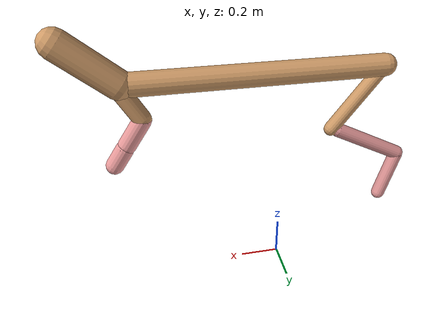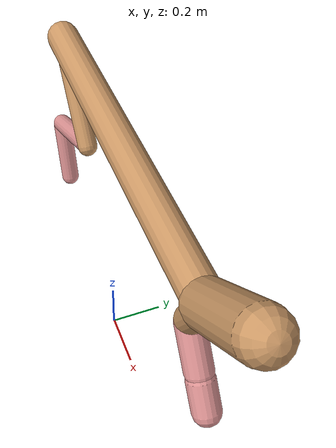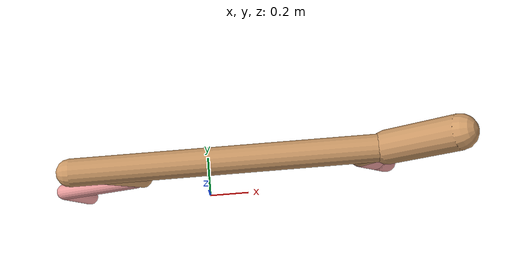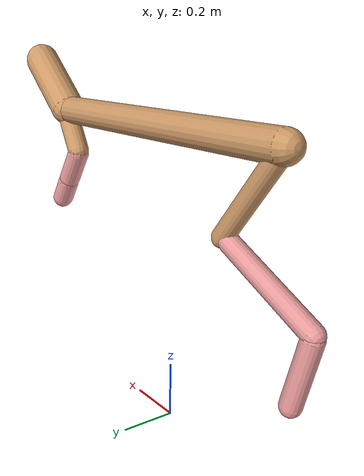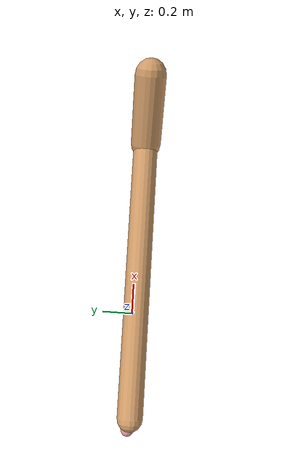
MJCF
<mujoco model="cheetah">
  <compiler angle="radian" coordinate="local" inertiafromgeom="true" settotalmass="14" />
  <default>
    <joint armature=".1" damping=".01" limited="true" solimplimit="0 .8 .03" solreflimit=".02 1" stiffness="8" />
    <geom conaffinity="0" condim="3" contype="1" friction="0.8 .1 .1" rgba="0.8 0.6 .4 1" solimp="0.0 0.8 0.01" solref="0.02 1" />
    <motor ctrllimited="true" ctrlrange="-1 1" />
  </default>
  <size nstack="300000" nuser_geom="1" />
  <option gravity="0 0 -9.81" timestep="0.01" />
  <worldbody>
    <body name="torso" pos="0.0 0.0 1.0622747859965904">
      <joint armature="0" axis="1 0 0" damping="0" limited="false" name="ignorex" pos="0 0 0" stiffness="0" type="slide" />
      <joint armature="0" axis="0 0 1" damping="0" limited="false" name="ignorez" pos="0 0 0" stiffness="0" type="slide" />
      <joint armature="0" axis="0 1 0" damping="0" limited="false" name="ignorey" pos="0 0 0" stiffness="0" type="hinge" />
      <geom fromto="-0.5 0.0 0.0 0.7549682288047828 0.0 0.0" name="torso" size="0.055752173078682785" type="capsule" />
      <geom axisangle="0 1 0 .87" name="head" pos="0.8549682288047827 0.0 0.1" size="0.06875907510202629 0.15" type="capsule" />

      <body name="bthigh" pos="-.5 0 0">
        <joint axis="0 1 0" damping="6" name="bthigh" pos="0 0 0" range="-.52 1.05" stiffness="240" type="hinge" />
        <geom axisangle="0 1 0 -3.8" name="bthigh" pos="0.1271423823169177 0.0 -0.165285097011993" size="0.03563134191652738 0.18951681692330982" type="capsule" />
        <body name="bshin" pos="0.21428476463383542 0.0 -0.320570194023986">
          <joint axis="0 1 0" damping="4.5" name="bshin" pos="0 0 0" range="-.785 .785" stiffness="180" type="hinge" />
          <geom axisangle="0 1 0 -2.03" name="bshin" pos="-0.181190053289283 0.0 -0.0905950266446415" rgba="0.9 0.6 0.6 1" size="0.03563134191652738 0.19605187957583775" type="capsule" />
          <body name="bfoot" pos="-0.362380106578566 0.0 -0.181190053289283">
            <joint axis="0 1 0" damping="3" name="bfoot" pos="0 0 0" range="-.4 .785" stiffness="120" type="hinge" />
            <geom axisangle="0 1 0 -.27" name="bfoot" pos="0.03852701328827628 0.0 -0.12457067629875998" rgba="0.9 0.6 0.6 1" size="0.03563134191652738 0.122859177867525" type="capsule" />
            <inertial mass="10" />
          </body>
        </body>
      </body>
      <body name="fthigh" pos="0.7549682288047828 0.0 0.0">
        <joint axis="0 1 0" damping="4.5" name="fthigh" pos="0 0 0" range="-1.5 0.8" stiffness="180" type="hinge" />
        <geom axisangle="0 1 0 .52" name="fthigh" pos="-0.04989554608158897 0.0 -0.0855352218541525" size="0.04311274810703968 0.0931" type="capsule" />
        <body name="fshin" pos="-0.09979109216317794 0.0 -0.171070443708305">
          <joint axis="0 1 0" damping="3" name="fshin" pos="0 0 0" range="-1.2 1.1" stiffness="120" type="hinge" />
          <geom axisangle="0 1 0 -.6" name="fshin" pos="0.046381400387749405 0.0 -0.06422040053688378" rgba="0.9 0.6 0.6 1" size="0.04311274810703968 0.07419999999999999" type="capsule" />
          <body name="ffoot" pos="0.09276280077549881 0.0 -0.12844080107376757">
            <joint axis="0 1 0" damping="1.5" name="ffoot" pos="0 0 0" range="-3.1 -0.3" stiffness="60" type="hinge" />
            <geom axisangle="0 1 0 -.6" name="ffoot" pos="0.033644090582416526 0.0 -0.05233525201709238" rgba="0.9 0.6 0.6 1" size="0.04311274810703968 0.049" type="capsule" />
            <inertial mass="10" />
          </body>
        </body>
      </body>
    </body>
  </worldbody>
  <actuator>
    <motor gear="120" joint="bthigh" name="bthigh" />
    <motor gear="90" joint="bshin" name="bshin" />
    <motor gear="60" joint="bfoot" name="bfoot" />
    <motor gear="120" joint="fthigh" name="fthigh" />
    <motor gear="60" joint="fshin" name="fshin" />
    <motor gear="30" joint="ffoot" name="ffoot" />
  </actuator>
</mujoco>
